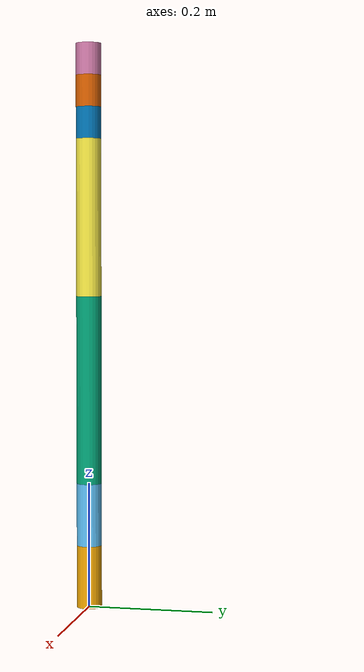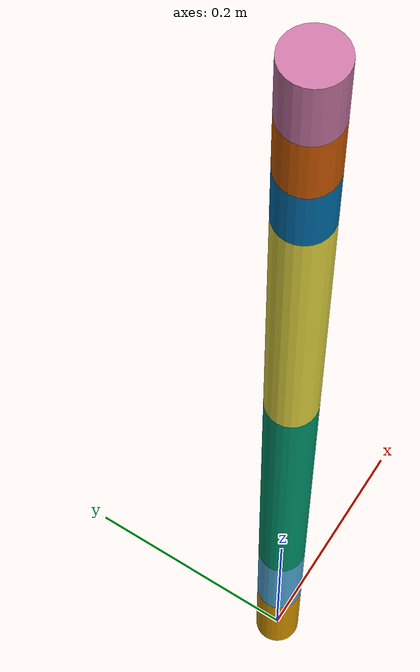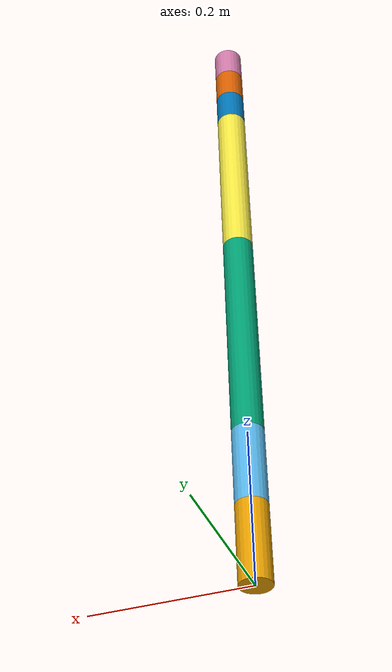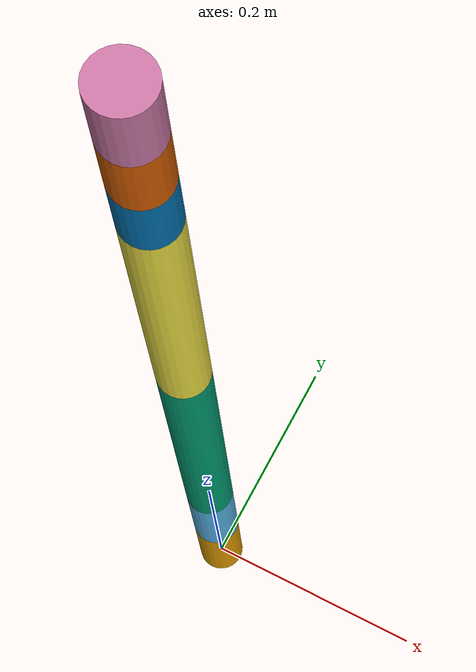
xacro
<?xml version="1.0"?>
<!-- 3장의 예제 6자유도 팔을 xacro로: 마디 하나를 매크로로 만들고 여섯 번 부른다 -->
<robot name="arm6" xmlns:xacro="http://www.ros.org/wiki/xacro">
  <xacro:arg name="tool_length" default="0.05"/>          <!-- 명령줄에서 바꿀 수 있는 값 -->
  <xacro:property name="radius" value="0.02"/>            <!-- 링크 막대 반지름(m) -->
  <xacro:property name="density" value="2.0"/>            <!-- 링크 1m당 질량(kg/m) -->

  <!-- z축 방향으로 length만큼 뻗은 막대 링크 -->
  <xacro:macro name="rod_link" params="name length">
    <xacro:property name="m" value="${density * length}"/>
    <link name="${name}">
      <visual>
        <origin xyz="0 0 ${length / 2}"/>
        <geometry><cylinder radius="${radius}" length="${length}"/></geometry>
      </visual>
      <collision>
        <origin xyz="0 0 ${length / 2}"/>
        <geometry><cylinder radius="${radius}" length="${length}"/></geometry>
      </collision>
      <inertial>
        <origin xyz="0 0 ${length / 2}"/>
        <mass value="${m}"/>
        <inertia ixx="${m * (3 * radius**2 + length**2) / 12}" ixy="0" ixz="0"
                 iyy="${m * (3 * radius**2 + length**2) / 12}" iyz="0" izz="${m * radius**2 / 2}"/>
      </inertial>
    </link>
  </xacro:macro>

  <!-- 마디 하나 = 회전 관절 joint{i} + 그 뒤의 링크 link{i} -->
  <xacro:macro name="segment" params="i parent offset axis length">
    <joint name="joint${i}" type="revolute">
      <parent link="${parent}"/>
      <child link="link${i}"/>
      <origin xyz="0 0 ${offset}" rpy="0 0 0"/>
      <axis xyz="${axis}"/>
      <limit lower="${-pi}" upper="${pi}" effort="10" velocity="2"/>
    </joint>
    <xacro:rod_link name="link${i}" length="${length}"/>
  </xacro:macro>

  <xacro:rod_link name="base_link" length="0.10"/>
  <xacro:segment i="1" parent="base_link" offset="0.10" axis="0 0 1" length="0.10"/>
  <xacro:segment i="2" parent="link1" offset="0.10" axis="0 1 0" length="0.30"/>
  <xacro:segment i="3" parent="link2" offset="0.30" axis="0 1 0" length="0.25"/>
  <xacro:segment i="4" parent="link3" offset="0.25" axis="0 0 1" length="0.05"/>
  <xacro:segment i="5" parent="link4" offset="0.05" axis="0 1 0" length="0.05"/>
  <xacro:segment i="6" parent="link5" offset="0.05" axis="0 0 1" length="$(arg tool_length)"/>

  <joint name="tip_joint" type="fixed">
    <parent link="link6"/>
    <child link="tip"/>
    <origin xyz="0 0 $(arg tool_length)"/>
  </joint>
  <link name="tip"/>
</robot>
